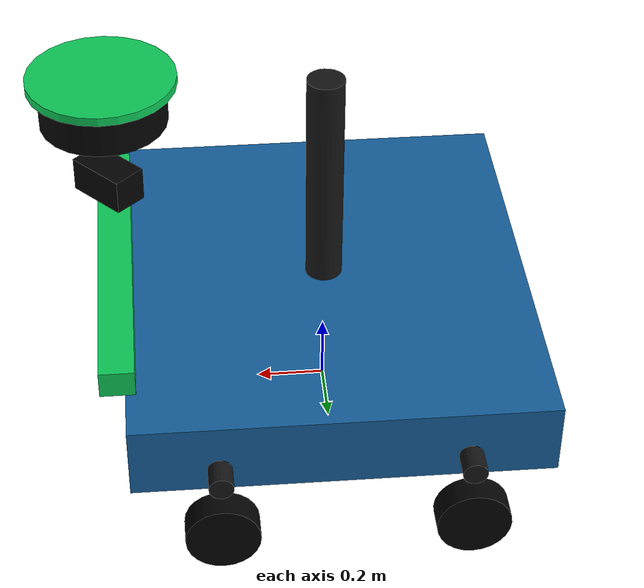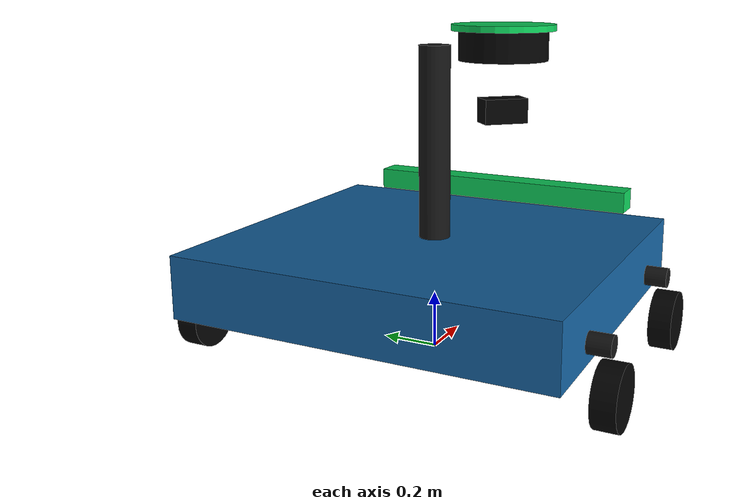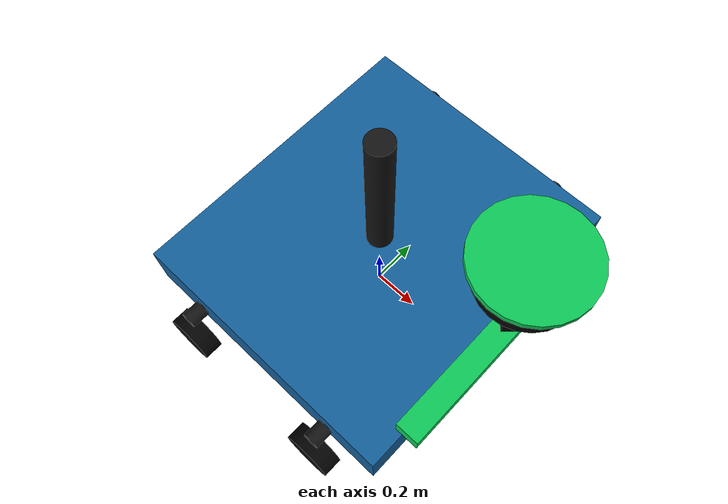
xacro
<?xml version="1.0"?>
<robot name="metro_train_inspection_car" xmlns:xacro="http://www.ros.org/wiki/xacro">
  <xacro:property name="base_length" value="1.20"/>
  <xacro:property name="base_width" value="1.35"/>
  <xacro:property name="base_height" value="0.22"/>
  <xacro:property name="base_z" value="0.30"/>
  <xacro:property name="wheel_radius" value="0.105"/>
  <xacro:property name="wheel_width" value="0.08"/>
  <xacro:property name="wheel_y" value="0.7525"/>
  <xacro:property name="front_wheel_x" value="0.35"/>
  <xacro:property name="rear_wheel_x" value="-0.35"/>
  <xacro:property name="wheel_z" value="-0.195"/>
  <xacro:property name="sensor_yaw" value="-0.82"/>

  <material name="body_blue">
    <color rgba="0.08 0.38 0.62 1"/>
  </material>
  <material name="dark_gray">
    <color rgba="0.08 0.08 0.08 1"/>
  </material>
  <material name="black">
    <color rgba="0.01 0.01 0.01 1"/>
  </material>
  <material name="sensor_green">
    <color rgba="0.05 0.8 0.35 1"/>
  </material>

  <link name="base_footprint"/>

  <joint name="base_footprint_joint" type="fixed">
    <parent link="base_footprint"/>
    <child link="base_link"/>
    <origin xyz="0 0 ${base_z}" rpy="0 0 0"/>
  </joint>

  <link name="base_link">
    <visual name="train_body">
      <origin xyz="0 0 0" rpy="0 0 0"/>
      <geometry>
        <box size="${base_length} ${base_width} ${base_height}"/>
      </geometry>
      <material name="body_blue"/>
    </visual>
    <visual name="front_axle_visual">
      <origin xyz="${front_wheel_x} 0 -0.04" rpy="1.5708 0 0"/>
      <geometry>
        <cylinder radius="0.035" length="1.505"/>
      </geometry>
      <material name="dark_gray"/>
    </visual>
    <visual name="rear_axle_visual">
      <origin xyz="${rear_wheel_x} 0 -0.04" rpy="1.5708 0 0"/>
      <geometry>
        <cylinder radius="0.035" length="1.505"/>
      </geometry>
      <material name="dark_gray"/>
    </visual>
    <visual name="front_sensor_bar">
      <origin xyz="0.62 0 0.16" rpy="0 0 0"/>
      <geometry>
        <box size="0.10 1.05 0.08"/>
      </geometry>
      <material name="sensor_green"/>
    </visual>
    <collision name="base_collision">
      <origin xyz="0 0 0" rpy="0 0 0"/>
      <geometry>
        <box size="${base_length} ${base_width} ${base_height}"/>
      </geometry>
      <surface>
        <friction><ode><mu>1.0</mu><mu2>1.0</mu2></ode></friction>
        <contact><ode><kp>1e+06</kp><kd>10</kd><max_vel>0.1</max_vel><min_depth>0.001</min_depth></ode></contact>
      </surface>
    </collision>
    <inertial>
      <mass value="8.0"/>
      <origin xyz="0 0 0" rpy="0 0 0"/>
      <inertia ixx="0.90" ixy="0" ixz="0" iyy="0.45" iyz="0" izz="1.10"/>
    </inertial>
  </link>

  <xacro:macro name="train_wheel" params="name x y">
    <link name="${name}">
      <visual>
        <origin xyz="0 0 0" rpy="1.5708 0 0"/>
        <geometry>
          <cylinder radius="${wheel_radius}" length="${wheel_width}"/>
        </geometry>
        <material name="black"/>
      </visual>
      <collision>
        <origin xyz="0 0 0" rpy="1.5708 0 0"/>
        <geometry>
          <cylinder radius="${wheel_radius}" length="${wheel_width}"/>
        </geometry>
        <surface>
          <friction><ode><mu>1.0</mu><mu2>1.0</mu2><slip1>0.01</slip1><slip2>0.01</slip2></ode></friction>
          <contact><ode><kp>1e+06</kp><kd>10</kd><max_vel>0.1</max_vel><min_depth>0.001</min_depth></ode></contact>
        </surface>
      </collision>
      <inertial>
        <mass value="0.2"/>
        <origin xyz="0 0 0" rpy="0 0 0"/>
        <inertia ixx="0.0007" ixy="0" ixz="0" iyy="0.0011" iyz="0" izz="0.0007"/>
      </inertial>
    </link>
    <joint name="${name}_joint" type="continuous">
      <parent link="base_link"/>
      <child link="${name}"/>
      <origin xyz="${x} ${y} ${wheel_z}" rpy="0 0 0"/>
      <axis xyz="0 1 0"/>
    </joint>
  </xacro:macro>

  <xacro:train_wheel name="left_wheel" x="${front_wheel_x}" y="${wheel_y}"/>
  <xacro:train_wheel name="right_wheel" x="${front_wheel_x}" y="-${wheel_y}"/>
  <xacro:train_wheel name="rear_left_wheel" x="${rear_wheel_x}" y="${wheel_y}"/>
  <xacro:train_wheel name="rear_right_wheel" x="${rear_wheel_x}" y="-${wheel_y}"/>

  <link name="sensor_mast">
    <visual>
      <origin xyz="0 0 0" rpy="0 0 0"/>
      <geometry>
        <cylinder radius="0.055" length="0.72"/>
      </geometry>
      <material name="dark_gray"/>
    </visual>
    <collision>
      <origin xyz="0 0 0" rpy="0 0 0"/>
      <geometry>
        <cylinder radius="0.055" length="0.72"/>
      </geometry>
    </collision>
    <inertial>
      <mass value="0.2"/>
      <origin xyz="0 0 0" rpy="0 0 0"/>
      <inertia ixx="0.005" ixy="0" ixz="0" iyy="0.005" iyz="0" izz="0.001"/>
    </inertial>
  </link>
  <joint name="sensor_mast_joint" type="fixed">
    <parent link="base_link"/>
    <child link="sensor_mast"/>
    <origin xyz="0 0 0.42" rpy="0 0 0"/>
  </joint>

  <link name="camera_link">
    <visual>
      <origin xyz="0 0 0" rpy="0 0 0"/>
      <geometry>
        <box size="0.18 0.10 0.10"/>
      </geometry>
      <material name="black"/>
    </visual>
    <collision>
      <origin xyz="0 0 0" rpy="0 0 0"/>
      <geometry>
        <box size="0.18 0.10 0.10"/>
      </geometry>
    </collision>
    <inertial>
      <mass value="0.1"/>
      <origin xyz="0 0 0" rpy="0 0 0"/>
      <inertia ixx="0.0001" ixy="0" ixz="0" iyy="0.0001" iyz="0" izz="0.0001"/>
    </inertial>
  </link>
  <joint name="camera_joint" type="fixed">
    <parent link="base_link"/>
    <child link="camera_link"/>
    <origin xyz="0.62 0 0.48" rpy="0 0 ${sensor_yaw}"/>
  </joint>

  <link name="camera_optical_frame"/>
  <joint name="camera_optical_joint" type="fixed">
    <parent link="camera_link"/>
    <child link="camera_optical_frame"/>
    <origin xyz="0 0 0" rpy="-1.5708 0 -1.5708"/>
  </joint>

  <link name="lidar_link">
    <visual name="lidar_body">
      <origin xyz="0 0 0" rpy="0 0 0"/>
      <geometry>
        <cylinder radius="0.18" length="0.12"/>
      </geometry>
      <material name="black"/>
    </visual>
    <visual name="lidar_ring">
      <origin xyz="0 0 0.07" rpy="0 0 0"/>
      <geometry>
        <cylinder radius="0.21" length="0.025"/>
      </geometry>
      <material name="sensor_green"/>
    </visual>
    <collision>
      <origin xyz="0 0 0" rpy="0 0 0"/>
      <geometry>
        <cylinder radius="0.18" length="0.12"/>
      </geometry>
    </collision>
    <inertial>
      <mass value="0.3"/>
      <origin xyz="0 0 0" rpy="0 0 0"/>
      <inertia ixx="0.003" ixy="0" ixz="0" iyy="0.003" iyz="0" izz="0.003"/>
    </inertial>
  </link>
  <joint name="lidar_joint" type="fixed">
    <parent link="sensor_mast"/>
    <child link="lidar_link"/>
    <origin xyz="0.62 0 0.32" rpy="0 0 ${sensor_yaw}"/>
  </joint>

  <gazebo reference="lidar_link">
    <sensor name="front_lidar" type="ray">
      <always_on>true</always_on>
      <visualize>true</visualize>
      <update_rate>10.0</update_rate>
      <ray>
        <scan>
          <horizontal>
            <samples>720</samples>
            <resolution>1.0</resolution>
            <min_angle>-1.0</min_angle>
            <max_angle>1.0</max_angle>
          </horizontal>
          <vertical>
            <samples>32</samples>
            <resolution>1.0</resolution>
            <min_angle>-0.55</min_angle>
            <max_angle>0.55</max_angle>
          </vertical>
        </scan>
        <range>
          <min>0.10</min>
          <max>30.0</max>
          <resolution>0.01</resolution>
        </range>
        <noise>
          <type>gaussian</type>
          <mean>0.0</mean>
          <stddev>0.002</stddev>
        </noise>
      </ray>
      <plugin name="lidar_point_cloud" filename="libgazebo_ros_ray_sensor.so">
        <ros>
          <namespace>/lidar</namespace>
          <remapping>~/out:=points</remapping>
        </ros>
        <output_type>sensor_msgs/PointCloud2</output_type>
        <frame_name>lidar_link</frame_name>
      </plugin>
    </sensor>
  </gazebo>

  <gazebo reference="camera_link">
    <sensor name="front_camera" type="camera">
      <always_on>true</always_on>
      <update_rate>15</update_rate>
      <visualize>true</visualize>
      <camera>
        <horizontal_fov>1.745</horizontal_fov>
        <image>
          <width>640</width>
          <height>480</height>
          <format>R8G8B8</format>
        </image>
        <clip>
          <near>0.05</near>
          <far>20.0</far>
        </clip>
      </camera>
      <plugin name="camera_controller" filename="libgazebo_ros_camera.so">
        <ros>
          <namespace>/camera</namespace>
          <remapping>front_camera/image_raw:=image_raw</remapping>
          <remapping>front_camera/camera_info:=camera_info</remapping>
        </ros>
        <camera_name>front_camera</camera_name>
        <frame_name>camera_optical_frame</frame_name>
      </plugin>
    </sensor>
  </gazebo>

  <gazebo>
    <plugin name="diff_drive" filename="libgazebo_ros_diff_drive.so">
      <ros>
        <remapping>cmd_vel:=/cmd_vel</remapping>
        <remapping>odom:=/odom</remapping>
      </ros>
      <left_joint>left_wheel_joint</left_joint>
      <right_joint>right_wheel_joint</right_joint>
      <wheel_separation>1.505</wheel_separation>
      <wheel_diameter>0.21</wheel_diameter>
      <max_wheel_torque>30</max_wheel_torque>
      <max_wheel_acceleration>5.0</max_wheel_acceleration>
      <publish_odom>true</publish_odom>
      <publish_odom_tf>true</publish_odom_tf>
      <publish_wheel_tf>true</publish_wheel_tf>
      <odometry_frame>odom</odometry_frame>
      <robot_base_frame>base_footprint</robot_base_frame>
      <odometry_source>1</odometry_source>
    </plugin>
  </gazebo>
</robot>
